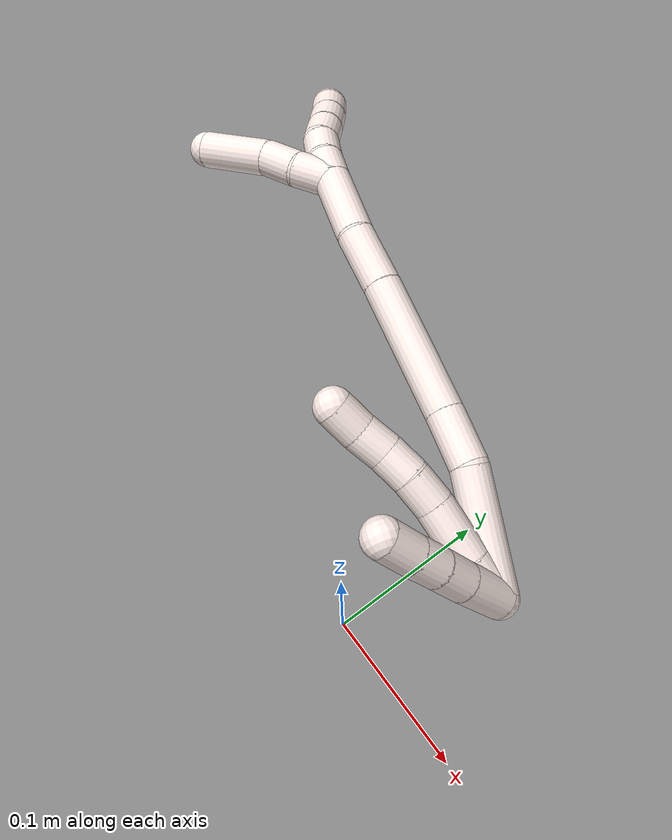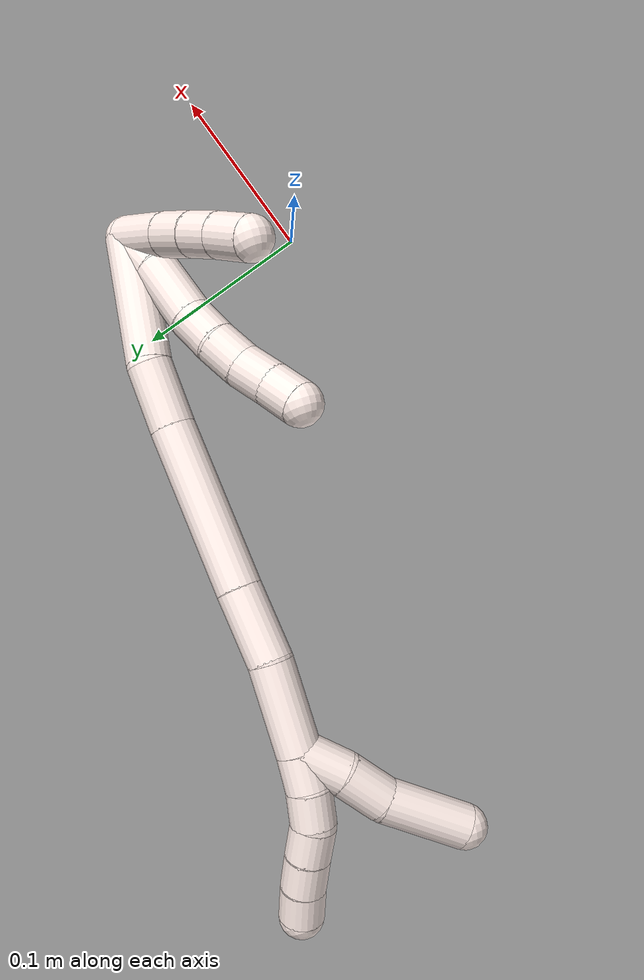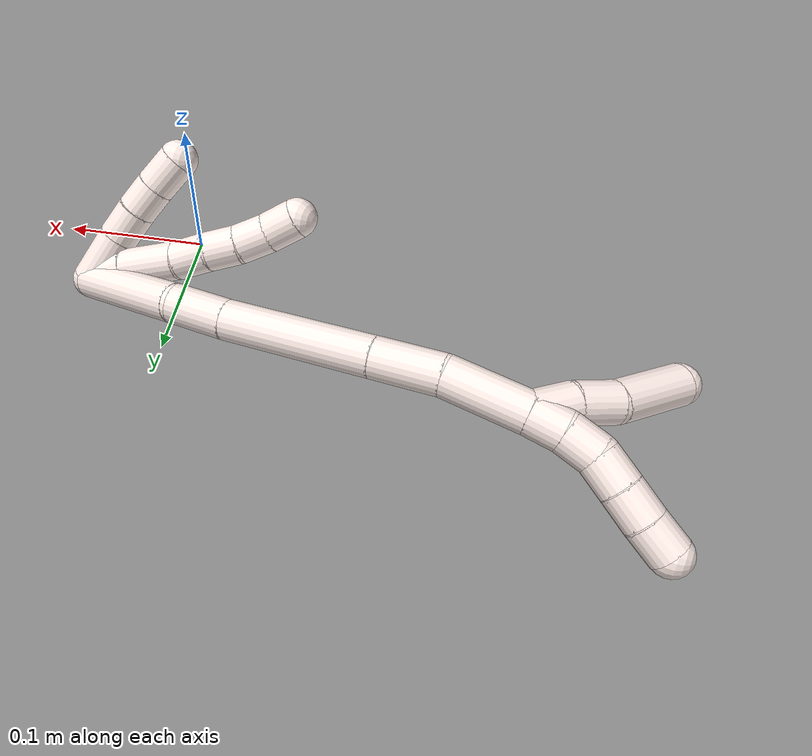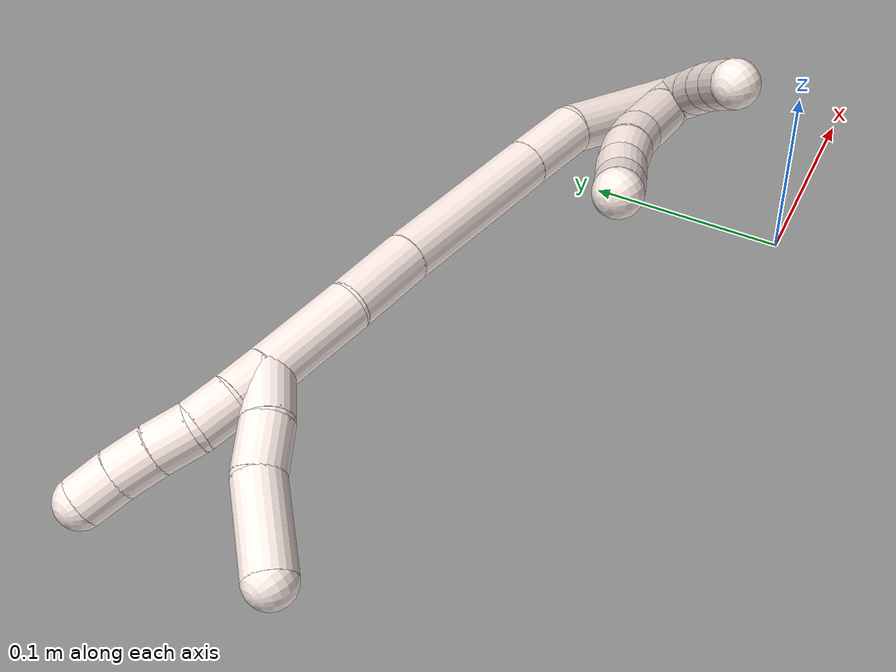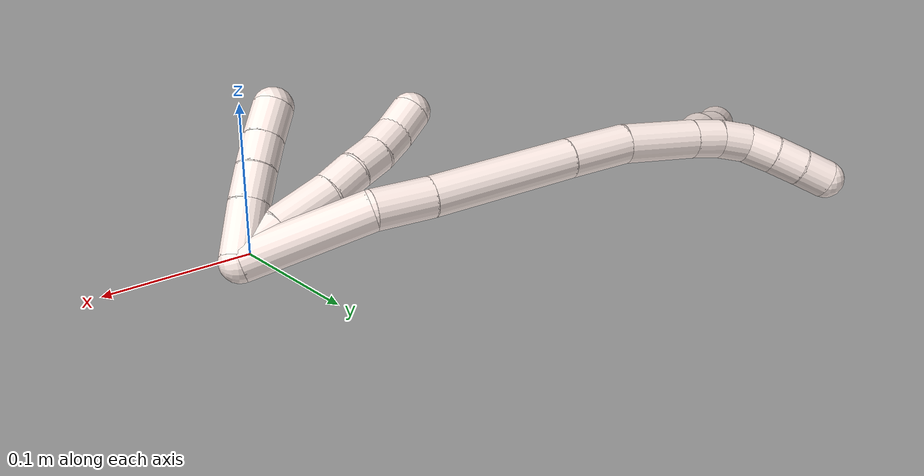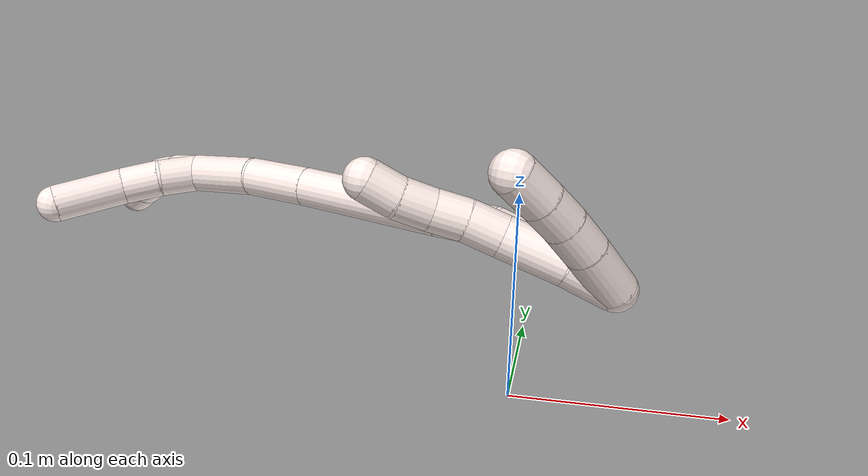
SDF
<sdf version="1.7">
 <world name="default">
  <model name="11">
   <static>0</static>
   <link name="11">
    <collision name="collision-cylinder-e_1_2_8">
     <pose>-0.000386 -0.00691 0.012647 0.500018 -0.026771 -0.006836</pose>
     <geometry><cylinder><radius>0.0125</radius><length>0.028834</length></cylinder></geometry>
     <surface>
      <friction><ode><mu>1.16</mu><mu2>1.16</mu2><slip1>0</slip1><slip2>0</slip2></ode></friction>
      <contact><ode><kp>1e+06</kp><kd>1</kd><max_vel>0</max_vel><min_depth>0.001</min_depth></ode></contact>
     </surface>
    </collision>
    <visual name="visual-cylinder-e_1_2_8">
     <pose>-0.000386 -0.00691 0.012647 0.500018 -0.026771 -0.006836</pose>
     <geometry><cylinder><radius>0.0125</radius><length>0.028834</length></cylinder></geometry>
     <material><ambient>1 0.933333 0.909804 1</ambient></material>
    </visual>
    <collision name="collision-cylinder-e_2_8_9">
     <pose>-0.001235 -0.020802 0.043143 0.372903 -0.024167 -0.004559</pose>
     <geometry><cylinder><radius>0.0125</radius><length>0.038342</length></cylinder></geometry>
     <surface>
      <friction><ode><mu>1.16</mu><mu2>1.16</mu2><slip1>0</slip1><slip2>0</slip2></ode></friction>
      <contact><ode><kp>1e+06</kp><kd>1</kd><max_vel>0</max_vel><min_depth>0.001</min_depth></ode></contact>
     </surface>
    </collision>
    <visual name="visual-cylinder-e_2_8_9">
     <pose>-0.001235 -0.020802 0.043143 0.372903 -0.024167 -0.004559</pose>
     <geometry><cylinder><radius>0.0125</radius><length>0.038342</length></cylinder></geometry>
     <material><ambient>1 0.933333 0.909804 1</ambient></material>
    </visual>
    <collision name="collision-cylinder-e_3_9_10">
     <pose>-0.002648 -0.032897 0.070535 0.49185 -0.087475 -0.02197</pose>
     <geometry><cylinder><radius>0.0125</radius><length>0.021739</length></cylinder></geometry>
     <surface>
      <friction><ode><mu>1.16</mu><mu2>1.16</mu2><slip1>0</slip1><slip2>0</slip2></ode></friction>
      <contact><ode><kp>1e+06</kp><kd>1</kd><max_vel>0</max_vel><min_depth>0.001</min_depth></ode></contact>
     </surface>
    </collision>
    <visual name="visual-cylinder-e_3_9_10">
     <pose>-0.002648 -0.032897 0.070535 0.49185 -0.087475 -0.02197</pose>
     <geometry><cylinder><radius>0.0125</radius><length>0.021739</length></cylinder></geometry>
     <material><ambient>1 0.933333 0.909804 1</ambient></material>
    </visual>
    <collision name="collision-cylinder-e_4_10_11">
     <pose>-0.005881 -0.042473 0.088884 0.469135 -0.227375 -0.054557</pose>
     <geometry><cylinder><radius>0.0125</radius><length>0.020262</length></cylinder></geometry>
     <surface>
      <friction><ode><mu>1.16</mu><mu2>1.16</mu2><slip1>0</slip1><slip2>0</slip2></ode></friction>
      <contact><ode><kp>1e+06</kp><kd>1</kd><max_vel>0</max_vel><min_depth>0.001</min_depth></ode></contact>
     </surface>
    </collision>
    <visual name="visual-cylinder-e_4_10_11">
     <pose>-0.005881 -0.042473 0.088884 0.469135 -0.227375 -0.054557</pose>
     <geometry><cylinder><radius>0.0125</radius><length>0.020262</length></cylinder></geometry>
     <material><ambient>1 0.933333 0.909804 1</ambient></material>
    </visual>
    <collision name="collision-cylinder-e_5_11_12">
     <pose>-0.010673 -0.052634 0.105726 0.616612 -0.249226 -0.07974</pose>
     <geometry><cylinder><radius>0.0125</radius><length>0.020334</length></cylinder></geometry>
     <surface>
      <friction><ode><mu>1.16</mu><mu2>1.16</mu2><slip1>0</slip1><slip2>0</slip2></ode></friction>
      <contact><ode><kp>1e+06</kp><kd>1</kd><max_vel>0</max_vel><min_depth>0.001</min_depth></ode></contact>
     </surface>
    </collision>
    <visual name="visual-cylinder-e_5_11_12">
     <pose>-0.010673 -0.052634 0.105726 0.616612 -0.249226 -0.07974</pose>
     <geometry><cylinder><radius>0.0125</radius><length>0.020334</length></cylinder></geometry>
     <material><ambient>1 0.933333 0.909804 1</ambient></material>
    </visual>
    <collision name="collision-cylinder-e_6_12_6">
     <pose>-0.014144 -0.064772 0.121673 0.683451 -0.09419 -0.033523</pose>
     <geometry><cylinder><radius>0.0125</radius><length>0.020489</length></cylinder></geometry>
     <surface>
      <friction><ode><mu>1.16</mu><mu2>1.16</mu2><slip1>0</slip1><slip2>0</slip2></ode></friction>
      <contact><ode><kp>1e+06</kp><kd>1</kd><max_vel>0</max_vel><min_depth>0.001</min_depth></ode></contact>
     </surface>
    </collision>
    <visual name="visual-cylinder-e_6_12_6">
     <pose>-0.014144 -0.064772 0.121673 0.683451 -0.09419 -0.033523</pose>
     <geometry><cylinder><radius>0.0125</radius><length>0.020489</length></cylinder></geometry>
     <material><ambient>1 0.933333 0.909804 1</ambient></material>
    </visual>
    <collision name="collision-cylinder-e_1_2_13">
     <pose>-0.000385 -0.01581 0.006957 1.15627 -0.022265 -0.014529</pose>
     <geometry><cylinder><radius>0.0125</radius><length>0.034555</length></cylinder></geometry>
     <surface>
      <friction><ode><mu>1.16</mu><mu2>1.16</mu2><slip1>0</slip1><slip2>0</slip2></ode></friction>
      <contact><ode><kp>1e+06</kp><kd>1</kd><max_vel>0</max_vel><min_depth>0.001</min_depth></ode></contact>
     </surface>
    </collision>
    <visual name="visual-cylinder-e_1_2_13">
     <pose>-0.000385 -0.01581 0.006957 1.15627 -0.022265 -0.014529</pose>
     <geometry><cylinder><radius>0.0125</radius><length>0.034555</length></cylinder></geometry>
     <material><ambient>1 0.933333 0.909804 1</ambient></material>
    </visual>
    <collision name="collision-cylinder-e_2_13_14">
     <pose>-0.000999 -0.041619 0.018907 1.10764 -0.020567 -0.012719</pose>
     <geometry><cylinder><radius>0.0125</radius><length>0.022356</length></cylinder></geometry>
     <surface>
      <friction><ode><mu>1.16</mu><mu2>1.16</mu2><slip1>0</slip1><slip2>0</slip2></ode></friction>
      <contact><ode><kp>1e+06</kp><kd>1</kd><max_vel>0</max_vel><min_depth>0.001</min_depth></ode></contact>
     </surface>
    </collision>
    <visual name="visual-cylinder-e_2_13_14">
     <pose>-0.000999 -0.041619 0.018907 1.10764 -0.020567 -0.012719</pose>
     <geometry><cylinder><radius>0.0125</radius><length>0.022356</length></cylinder></geometry>
     <material><ambient>1 0.933333 0.909804 1</ambient></material>
    </visual>
    <collision name="collision-cylinder-e_3_14_15">
     <pose>-0.001966 -0.060414 0.028646 1.076 -0.073592 -0.043926</pose>
     <geometry><cylinder><radius>0.0125</radius><length>0.020045</length></cylinder></geometry>
     <surface>
      <friction><ode><mu>1.16</mu><mu2>1.16</mu2><slip1>0</slip1><slip2>0</slip2></ode></friction>
      <contact><ode><kp>1e+06</kp><kd>1</kd><max_vel>0</max_vel><min_depth>0.001</min_depth></ode></contact>
     </surface>
    </collision>
    <visual name="visual-cylinder-e_3_14_15">
     <pose>-0.001966 -0.060414 0.028646 1.076 -0.073592 -0.043926</pose>
     <geometry><cylinder><radius>0.0125</radius><length>0.020045</length></cylinder></geometry>
     <material><ambient>1 0.933333 0.909804 1</ambient></material>
    </visual>
    <collision name="collision-cylinder-e_4_15_5">
     <pose>-0.003562 -0.07908 0.039275 1.03329 -0.07462 -0.042406</pose>
     <geometry><cylinder><radius>0.0125</radius><length>0.023044</length></cylinder></geometry>
     <surface>
      <friction><ode><mu>1.16</mu><mu2>1.16</mu2><slip1>0</slip1><slip2>0</slip2></ode></friction>
      <contact><ode><kp>1e+06</kp><kd>1</kd><max_vel>0</max_vel><min_depth>0.001</min_depth></ode></contact>
     </surface>
    </collision>
    <visual name="visual-cylinder-e_4_15_5">
     <pose>-0.003562 -0.07908 0.039275 1.03329 -0.07462 -0.042406</pose>
     <geometry><cylinder><radius>0.0125</radius><length>0.023044</length></cylinder></geometry>
     <material><ambient>1 0.933333 0.909804 1</ambient></material>
    </visual>
    <collision name="collision-cylinder-e_1_2_16">
     <pose>0.009001 -0.002492 0.038362 0.06488 0.229984 0.007496</pose>
     <geometry><cylinder><radius>0.0125</radius><length>0.078965</length></cylinder></geometry>
     <surface>
      <friction><ode><mu>1.16</mu><mu2>1.16</mu2><slip1>0</slip1><slip2>0</slip2></ode></friction>
      <contact><ode><kp>1e+06</kp><kd>1</kd><max_vel>0</max_vel><min_depth>0.001</min_depth></ode></contact>
     </surface>
    </collision>
    <visual name="visual-cylinder-e_1_2_16">
     <pose>0.009001 -0.002492 0.038362 0.06488 0.229984 0.007496</pose>
     <geometry><cylinder><radius>0.0125</radius><length>0.078965</length></cylinder></geometry>
     <material><ambient>1 0.933333 0.909804 1</ambient></material>
    </visual>
    <collision name="collision-cylinder-e_2_16_17">
     <pose>0.017227 -0.004835 0.095096 -0.008146 -0.042116 0.000172</pose>
     <geometry><cylinder><radius>0.0125</radius><length>0.036777</length></cylinder></geometry>
     <surface>
      <friction><ode><mu>1.16</mu><mu2>1.16</mu2><slip1>0</slip1><slip2>0</slip2></ode></friction>
      <contact><ode><kp>1e+06</kp><kd>1</kd><max_vel>0</max_vel><min_depth>0.001</min_depth></ode></contact>
     </surface>
    </collision>
    <visual name="visual-cylinder-e_2_16_17">
     <pose>0.017227 -0.004835 0.095096 -0.008146 -0.042116 0.000172</pose>
     <geometry><cylinder><radius>0.0125</radius><length>0.036777</length></cylinder></geometry>
     <material><ambient>1 0.933333 0.909804 1</ambient></material>
    </visual>
    <collision name="collision-cylinder-e_3_17_18">
     <pose>0.014388 -0.006658 0.160153 0.04223 -0.044154 -0.000933</pose>
     <geometry><cylinder><radius>0.0125</radius><length>0.093546</length></cylinder></geometry>
     <surface>
      <friction><ode><mu>1.16</mu><mu2>1.16</mu2><slip1>0</slip1><slip2>0</slip2></ode></friction>
      <contact><ode><kp>1e+06</kp><kd>1</kd><max_vel>0</max_vel><min_depth>0.001</min_depth></ode></contact>
     </surface>
    </collision>
    <visual name="visual-cylinder-e_3_17_18">
     <pose>0.014388 -0.006658 0.160153 0.04223 -0.044154 -0.000933</pose>
     <geometry><cylinder><radius>0.0125</radius><length>0.093546</length></cylinder></geometry>
     <material><ambient>1 0.933333 0.909804 1</ambient></material>
    </visual>
    <collision name="collision-cylinder-e_4_18_19">
     <pose>0.0108 -0.009351 0.22735 0.035078 -0.074097 -0.0013</pose>
     <geometry><cylinder><radius>0.0125</radius><length>0.04116</length></cylinder></geometry>
     <surface>
      <friction><ode><mu>1.16</mu><mu2>1.16</mu2><slip1>0</slip1><slip2>0</slip2></ode></friction>
      <contact><ode><kp>1e+06</kp><kd>1</kd><max_vel>0</max_vel><min_depth>0.001</min_depth></ode></contact>
     </surface>
    </collision>
    <visual name="visual-cylinder-e_4_18_19">
     <pose>0.0108 -0.009351 0.22735 0.035078 -0.074097 -0.0013</pose>
     <geometry><cylinder><radius>0.0125</radius><length>0.04116</length></cylinder></geometry>
     <material><ambient>1 0.933333 0.909804 1</ambient></material>
    </visual>
    <collision name="collision-cylinder-e_5_19_1">
     <pose>0.007409 -0.006786 0.272347 -0.133346 -0.075436 0.005039</pose>
     <geometry><cylinder><radius>0.0125</radius><length>0.049552</length></cylinder></geometry>
     <surface>
      <friction><ode><mu>1.16</mu><mu2>1.16</mu2><slip1>0</slip1><slip2>0</slip2></ode></friction>
      <contact><ode><kp>1e+06</kp><kd>1</kd><max_vel>0</max_vel><min_depth>0.001</min_depth></ode></contact>
     </surface>
    </collision>
    <visual name="visual-cylinder-e_5_19_1">
     <pose>0.007409 -0.006786 0.272347 -0.133346 -0.075436 0.005039</pose>
     <geometry><cylinder><radius>0.0125</radius><length>0.049552</length></cylinder></geometry>
     <material><ambient>1 0.933333 0.909804 1</ambient></material>
    </visual>
    <collision name="collision-cylinder-e_1_1_20">
     <pose>-0.003018 -0.007805 0.305904 0.442991 -0.705958 -0.165545</pose>
     <geometry><cylinder><radius>0.0125</radius><length>0.026388</length></cylinder></geometry>
     <surface>
      <friction><ode><mu>1.16</mu><mu2>1.16</mu2><slip1>0</slip1><slip2>0</slip2></ode></friction>
      <contact><ode><kp>1e+06</kp><kd>1</kd><max_vel>0</max_vel><min_depth>0.001</min_depth></ode></contact>
     </surface>
    </collision>
    <visual name="visual-cylinder-e_1_1_20">
     <pose>-0.003018 -0.007805 0.305904 0.442991 -0.705958 -0.165545</pose>
     <geometry><cylinder><radius>0.0125</radius><length>0.026388</length></cylinder></geometry>
     <material><ambient>1 0.933333 0.909804 1</ambient></material>
    </visual>
    <collision name="collision-cylinder-e_2_20_21">
     <pose>-0.019695 -0.01418 0.324937 0.205009 -0.673418 -0.071982</pose>
     <geometry><cylinder><radius>0.0125</radius><length>0.026031</length></cylinder></geometry>
     <surface>
      <friction><ode><mu>1.16</mu><mu2>1.16</mu2><slip1>0</slip1><slip2>0</slip2></ode></friction>
      <contact><ode><kp>1e+06</kp><kd>1</kd><max_vel>0</max_vel><min_depth>0.001</min_depth></ode></contact>
     </surface>
    </collision>
    <visual name="visual-cylinder-e_2_20_21">
     <pose>-0.019695 -0.01418 0.324937 0.205009 -0.673418 -0.071982</pose>
     <geometry><cylinder><radius>0.0125</radius><length>0.026031</length></cylinder></geometry>
     <material><ambient>1 0.933333 0.909804 1</ambient></material>
    </visual>
    <collision name="collision-cylinder-e_3_21_4">
     <pose>-0.045624 -0.023161 0.349075 0.453533 -0.846104 -0.207029</pose>
     <geometry><cylinder><radius>0.0125</radius><length>0.04758</length></cylinder></geometry>
     <surface>
      <friction><ode><mu>1.16</mu><mu2>1.16</mu2><slip1>0</slip1><slip2>0</slip2></ode></friction>
      <contact><ode><kp>1e+06</kp><kd>1</kd><max_vel>0</max_vel><min_depth>0.001</min_depth></ode></contact>
     </surface>
    </collision>
    <visual name="visual-cylinder-e_3_21_4">
     <pose>-0.045624 -0.023161 0.349075 0.453533 -0.846104 -0.207029</pose>
     <geometry><cylinder><radius>0.0125</radius><length>0.04758</length></cylinder></geometry>
     <material><ambient>1 0.933333 0.909804 1</ambient></material>
    </visual>
    <collision name="collision-cylinder-e_1_1_22">
     <pose>0.004887 -0.001552 0.306619 -0.196636 -0.065522 0.006465</pose>
     <geometry><cylinder><radius>0.0125</radius><length>0.02</length></cylinder></geometry>
     <surface>
      <friction><ode><mu>1.16</mu><mu2>1.16</mu2><slip1>0</slip1><slip2>0</slip2></ode></friction>
      <contact><ode><kp>1e+06</kp><kd>1</kd><max_vel>0</max_vel><min_depth>0.001</min_depth></ode></contact>
     </surface>
    </collision>
    <visual name="visual-cylinder-e_1_1_22">
     <pose>0.004887 -0.001552 0.306619 -0.196636 -0.065522 0.006465</pose>
     <geometry><cylinder><radius>0.0125</radius><length>0.02</length></cylinder></geometry>
     <material><ambient>1 0.933333 0.909804 1</ambient></material>
    </visual>
    <collision name="collision-cylinder-e_2_22_23">
     <pose>0.003702 0.004001 0.325719 -0.369191 -0.053031 0.009904</pose>
     <geometry><cylinder><radius>0.0125</radius><length>0.02</length></cylinder></geometry>
     <surface>
      <friction><ode><mu>1.16</mu><mu2>1.16</mu2><slip1>0</slip1><slip2>0</slip2></ode></friction>
      <contact><ode><kp>1e+06</kp><kd>1</kd><max_vel>0</max_vel><min_depth>0.001</min_depth></ode></contact>
     </surface>
    </collision>
    <visual name="visual-cylinder-e_2_22_23">
     <pose>0.003702 0.004001 0.325719 -0.369191 -0.053031 0.009904</pose>
     <geometry><cylinder><radius>0.0125</radius><length>0.02</length></cylinder></geometry>
     <material><ambient>1 0.933333 0.909804 1</ambient></material>
    </visual>
    <collision name="collision-cylinder-e_3_23_24">
     <pose>0.003673 0.013815 0.342853 -0.67109 0.050115 -0.01748</pose>
     <geometry><cylinder><radius>0.0125</radius><length>0.02</length></cylinder></geometry>
     <surface>
      <friction><ode><mu>1.16</mu><mu2>1.16</mu2><slip1>0</slip1><slip2>0</slip2></ode></friction>
      <contact><ode><kp>1e+06</kp><kd>1</kd><max_vel>0</max_vel><min_depth>0.001</min_depth></ode></contact>
     </surface>
    </collision>
    <visual name="visual-cylinder-e_3_23_24">
     <pose>0.003673 0.013815 0.342853 -0.67109 0.050115 -0.01748</pose>
     <geometry><cylinder><radius>0.0125</radius><length>0.02</length></cylinder></geometry>
     <material><ambient>1 0.933333 0.909804 1</ambient></material>
    </visual>
    <collision name="collision-cylinder-e_4_24_25">
     <pose>0.004064 0.026377 0.358399 -0.688164 -0.010985 0.003936</pose>
     <geometry><cylinder><radius>0.0125</radius><length>0.02</length></cylinder></geometry>
     <surface>
      <friction><ode><mu>1.16</mu><mu2>1.16</mu2><slip1>0</slip1><slip2>0</slip2></ode></friction>
      <contact><ode><kp>1e+06</kp><kd>1</kd><max_vel>0</max_vel><min_depth>0.001</min_depth></ode></contact>
     </surface>
    </collision>
    <visual name="visual-cylinder-e_4_24_25">
     <pose>0.004064 0.026377 0.358399 -0.688164 -0.010985 0.003936</pose>
     <geometry><cylinder><radius>0.0125</radius><length>0.02</length></cylinder></geometry>
     <material><ambient>1 0.933333 0.909804 1</ambient></material>
    </visual>
    <collision name="collision-cylinder-e_5_25_3">
     <pose>0.00312 0.038845 0.373989 -0.660973 -0.08353 0.028671</pose>
     <geometry><cylinder><radius>0.0125</radius><length>0.02</length></cylinder></geometry>
     <surface>
      <friction><ode><mu>1.16</mu><mu2>1.16</mu2><slip1>0</slip1><slip2>0</slip2></ode></friction>
      <contact><ode><kp>1e+06</kp><kd>1</kd><max_vel>0</max_vel><min_depth>0.001</min_depth></ode></contact>
     </surface>
    </collision>
    <visual name="visual-cylinder-e_5_25_3">
     <pose>0.00312 0.038845 0.373989 -0.660973 -0.08353 0.028671</pose>
     <geometry><cylinder><radius>0.0125</radius><length>0.02</length></cylinder></geometry>
     <material><ambient>1 0.933333 0.909804 1</ambient></material>
    </visual>
    <collision name="collision-sphere-3">
     <pose>0.002286 0.044963 0.381855 0 -0 0</pose>
     <geometry><sphere><radius>0.0125</radius></sphere></geometry>
     <surface>
      <friction><ode><mu>1.16</mu><mu2>1.16</mu2><slip1>0</slip1><slip2>0</slip2></ode></friction>
      <contact><ode><kp>1e+06</kp><kd>1</kd><max_vel>0</max_vel><min_depth>0.001</min_depth></ode></contact>
     </surface>
    </collision>
    <visual name="visual-sphere-3">
     <pose>0.002286 0.044963 0.381855 0 -0 0</pose>
     <geometry><sphere><radius>0.0125</radius></sphere></geometry>
     <material><ambient>1 0.933333 0.909804 1</ambient></material>
    </visual>
    <collision name="collision-sphere-25">
     <pose>0.003955 0.032728 0.366122 0 -0 0</pose>
     <geometry><sphere><radius>0.0125</radius></sphere></geometry>
     <surface>
      <friction><ode><mu>1.16</mu><mu2>1.16</mu2><slip1>0</slip1><slip2>0</slip2></ode></friction>
      <contact><ode><kp>1e+06</kp><kd>1</kd><max_vel>0</max_vel><min_depth>0.001</min_depth></ode></contact>
     </surface>
    </collision>
    <visual name="visual-sphere-25">
     <pose>0.003955 0.032728 0.366122 0 -0 0</pose>
     <geometry><sphere><radius>0.0125</radius></sphere></geometry>
     <material><ambient>1 0.933333 0.909804 1</ambient></material>
    </visual>
    <collision name="collision-sphere-24">
     <pose>0.004174 0.020026 0.350675 0 -0 0</pose>
     <geometry><sphere><radius>0.0125</radius></sphere></geometry>
     <surface>
      <friction><ode><mu>1.16</mu><mu2>1.16</mu2><slip1>0</slip1><slip2>0</slip2></ode></friction>
      <contact><ode><kp>1e+06</kp><kd>1</kd><max_vel>0</max_vel><min_depth>0.001</min_depth></ode></contact>
     </surface>
    </collision>
    <visual name="visual-sphere-24">
     <pose>0.004174 0.020026 0.350675 0 -0 0</pose>
     <geometry><sphere><radius>0.0125</radius></sphere></geometry>
     <material><ambient>1 0.933333 0.909804 1</ambient></material>
    </visual>
    <collision name="collision-sphere-23">
     <pose>0.003172 0.007605 0.335032 0 -0 0</pose>
     <geometry><sphere><radius>0.0125</radius></sphere></geometry>
     <surface>
      <friction><ode><mu>1.16</mu><mu2>1.16</mu2><slip1>0</slip1><slip2>0</slip2></ode></friction>
      <contact><ode><kp>1e+06</kp><kd>1</kd><max_vel>0</max_vel><min_depth>0.001</min_depth></ode></contact>
     </surface>
    </collision>
    <visual name="visual-sphere-23">
     <pose>0.003172 0.007605 0.335032 0 -0 0</pose>
     <geometry><sphere><radius>0.0125</radius></sphere></geometry>
     <material><ambient>1 0.933333 0.909804 1</ambient></material>
    </visual>
    <collision name="collision-sphere-22">
     <pose>0.004233 0.000398 0.316406 0 -0 0</pose>
     <geometry><sphere><radius>0.0125</radius></sphere></geometry>
     <surface>
      <friction><ode><mu>1.16</mu><mu2>1.16</mu2><slip1>0</slip1><slip2>0</slip2></ode></friction>
      <contact><ode><kp>1e+06</kp><kd>1</kd><max_vel>0</max_vel><min_depth>0.001</min_depth></ode></contact>
     </surface>
    </collision>
    <visual name="visual-sphere-22">
     <pose>0.004233 0.000398 0.316406 0 -0 0</pose>
     <geometry><sphere><radius>0.0125</radius></sphere></geometry>
     <material><ambient>1 0.933333 0.909804 1</ambient></material>
    </visual>
    <collision name="collision-sphere-4">
     <pose>-0.063436 -0.030071 0.363251 0 -0 0</pose>
     <geometry><sphere><radius>0.0125</radius></sphere></geometry>
     <surface>
      <friction><ode><mu>1.16</mu><mu2>1.16</mu2><slip1>0</slip1><slip2>0</slip2></ode></friction>
      <contact><ode><kp>1e+06</kp><kd>1</kd><max_vel>0</max_vel><min_depth>0.001</min_depth></ode></contact>
     </surface>
    </collision>
    <visual name="visual-sphere-4">
     <pose>-0.063436 -0.030071 0.363251 0 -0 0</pose>
     <geometry><sphere><radius>0.0125</radius></sphere></geometry>
     <material><ambient>1 0.933333 0.909804 1</ambient></material>
    </visual>
    <collision name="collision-sphere-21">
     <pose>-0.027813 -0.016252 0.334898 0 -0 0</pose>
     <geometry><sphere><radius>0.0125</radius></sphere></geometry>
     <surface>
      <friction><ode><mu>1.16</mu><mu2>1.16</mu2><slip1>0</slip1><slip2>0</slip2></ode></friction>
      <contact><ode><kp>1e+06</kp><kd>1</kd><max_vel>0</max_vel><min_depth>0.001</min_depth></ode></contact>
     </surface>
    </collision>
    <visual name="visual-sphere-21">
     <pose>-0.027813 -0.016252 0.334898 0 -0 0</pose>
     <geometry><sphere><radius>0.0125</radius></sphere></geometry>
     <material><ambient>1 0.933333 0.909804 1</ambient></material>
    </visual>
    <collision name="collision-sphere-20">
     <pose>-0.011578 -0.012109 0.314976 0 -0 0</pose>
     <geometry><sphere><radius>0.0125</radius></sphere></geometry>
     <surface>
      <friction><ode><mu>1.16</mu><mu2>1.16</mu2><slip1>0</slip1><slip2>0</slip2></ode></friction>
      <contact><ode><kp>1e+06</kp><kd>1</kd><max_vel>0</max_vel><min_depth>0.001</min_depth></ode></contact>
     </surface>
    </collision>
    <visual name="visual-sphere-20">
     <pose>-0.011578 -0.012109 0.314976 0 -0 0</pose>
     <geometry><sphere><radius>0.0125</radius></sphere></geometry>
     <material><ambient>1 0.933333 0.909804 1</ambient></material>
    </visual>
    <collision name="collision-sphere-12">
     <pose>-0.013181 -0.058331 0.113765 0 -0 0</pose>
     <geometry><sphere><radius>0.0125</radius></sphere></geometry>
     <surface>
      <friction><ode><mu>1.16</mu><mu2>1.16</mu2><slip1>0</slip1><slip2>0</slip2></ode></friction>
      <contact><ode><kp>1e+06</kp><kd>1</kd><max_vel>0</max_vel><min_depth>0.001</min_depth></ode></contact>
     </surface>
    </collision>
    <visual name="visual-sphere-12">
     <pose>-0.013181 -0.058331 0.113765 0 -0 0</pose>
     <geometry><sphere><radius>0.0125</radius></sphere></geometry>
     <material><ambient>1 0.933333 0.909804 1</ambient></material>
    </visual>
    <collision name="collision-sphere-11">
     <pose>-0.008165 -0.046936 0.097688 0 -0 0</pose>
     <geometry><sphere><radius>0.0125</radius></sphere></geometry>
     <surface>
      <friction><ode><mu>1.16</mu><mu2>1.16</mu2><slip1>0</slip1><slip2>0</slip2></ode></friction>
      <contact><ode><kp>1e+06</kp><kd>1</kd><max_vel>0</max_vel><min_depth>0.001</min_depth></ode></contact>
     </surface>
    </collision>
    <visual name="visual-sphere-11">
     <pose>-0.008165 -0.046936 0.097688 0 -0 0</pose>
     <geometry><sphere><radius>0.0125</radius></sphere></geometry>
     <material><ambient>1 0.933333 0.909804 1</ambient></material>
    </visual>
    <collision name="collision-sphere-10">
     <pose>-0.003597 -0.038011 0.08008 0 -0 0</pose>
     <geometry><sphere><radius>0.0125</radius></sphere></geometry>
     <surface>
      <friction><ode><mu>1.16</mu><mu2>1.16</mu2><slip1>0</slip1><slip2>0</slip2></ode></friction>
      <contact><ode><kp>1e+06</kp><kd>1</kd><max_vel>0</max_vel><min_depth>0.001</min_depth></ode></contact>
     </surface>
    </collision>
    <visual name="visual-sphere-10">
     <pose>-0.003597 -0.038011 0.08008 0 -0 0</pose>
     <geometry><sphere><radius>0.0125</radius></sphere></geometry>
     <material><ambient>1 0.933333 0.909804 1</ambient></material>
    </visual>
    <collision name="collision-sphere-9">
     <pose>-0.001698 -0.027784 0.060991 0 -0 0</pose>
     <geometry><sphere><radius>0.0125</radius></sphere></geometry>
     <surface>
      <friction><ode><mu>1.16</mu><mu2>1.16</mu2><slip1>0</slip1><slip2>0</slip2></ode></friction>
      <contact><ode><kp>1e+06</kp><kd>1</kd><max_vel>0</max_vel><min_depth>0.001</min_depth></ode></contact>
     </surface>
    </collision>
    <visual name="visual-sphere-9">
     <pose>-0.001698 -0.027784 0.060991 0 -0 0</pose>
     <geometry><sphere><radius>0.0125</radius></sphere></geometry>
     <material><ambient>1 0.933333 0.909804 1</ambient></material>
    </visual>
    <collision name="collision-sphere-2">
     <geometry><sphere><radius>0.0125</radius></sphere></geometry>
     <surface>
      <friction><ode><mu>1.16</mu><mu2>1.16</mu2><slip1>0</slip1><slip2>0</slip2></ode></friction>
      <contact><ode><kp>1e+06</kp><kd>1</kd><max_vel>0</max_vel><min_depth>0.001</min_depth></ode></contact>
     </surface>
    </collision>
    <visual name="visual-sphere-2">
     <geometry><sphere><radius>0.0125</radius></sphere></geometry>
     <material><ambient>1 0.933333 0.909804 1</ambient></material>
    </visual>
    <collision name="collision-sphere-19">
     <pose>0.009276 -0.01007 0.247861 0 -0 0</pose>
     <geometry><sphere><radius>0.0125</radius></sphere></geometry>
     <surface>
      <friction><ode><mu>1.16</mu><mu2>1.16</mu2><slip1>0</slip1><slip2>0</slip2></ode></friction>
      <contact><ode><kp>1e+06</kp><kd>1</kd><max_vel>0</max_vel><min_depth>0.001</min_depth></ode></contact>
     </surface>
    </collision>
    <visual name="visual-sphere-19">
     <pose>0.009276 -0.01007 0.247861 0 -0 0</pose>
     <geometry><sphere><radius>0.0125</radius></sphere></geometry>
     <material><ambient>1 0.933333 0.909804 1</ambient></material>
    </visual>
    <collision name="collision-sphere-8">
     <pose>-0.000772 -0.013819 0.025295 0 -0 0</pose>
     <geometry><sphere><radius>0.0125</radius></sphere></geometry>
     <surface>
      <friction><ode><mu>1.16</mu><mu2>1.16</mu2><slip1>0</slip1><slip2>0</slip2></ode></friction>
      <contact><ode><kp>1e+06</kp><kd>1</kd><max_vel>0</max_vel><min_depth>0.001</min_depth></ode></contact>
     </surface>
    </collision>
    <visual name="visual-sphere-8">
     <pose>-0.000772 -0.013819 0.025295 0 -0 0</pose>
     <geometry><sphere><radius>0.0125</radius></sphere></geometry>
     <material><ambient>1 0.933333 0.909804 1</ambient></material>
    </visual>
    <collision name="collision-sphere-6">
     <pose>-0.015108 -0.071212 0.129581 0 -0 0</pose>
     <geometry><sphere><radius>0.0125</radius></sphere></geometry>
     <surface>
      <friction><ode><mu>1.16</mu><mu2>1.16</mu2><slip1>0</slip1><slip2>0</slip2></ode></friction>
      <contact><ode><kp>1e+06</kp><kd>1</kd><max_vel>0</max_vel><min_depth>0.001</min_depth></ode></contact>
     </surface>
    </collision>
    <visual name="visual-sphere-6">
     <pose>-0.015108 -0.071212 0.129581 0 -0 0</pose>
     <geometry><sphere><radius>0.0125</radius></sphere></geometry>
     <material><ambient>1 0.933333 0.909804 1</ambient></material>
    </visual>
    <collision name="collision-sphere-13">
     <pose>-0.000769 -0.03162 0.013914 0 -0 0</pose>
     <geometry><sphere><radius>0.0125</radius></sphere></geometry>
     <surface>
      <friction><ode><mu>1.16</mu><mu2>1.16</mu2><slip1>0</slip1><slip2>0</slip2></ode></friction>
      <contact><ode><kp>1e+06</kp><kd>1</kd><max_vel>0</max_vel><min_depth>0.001</min_depth></ode></contact>
     </surface>
    </collision>
    <visual name="visual-sphere-13">
     <pose>-0.000769 -0.03162 0.013914 0 -0 0</pose>
     <geometry><sphere><radius>0.0125</radius></sphere></geometry>
     <material><ambient>1 0.933333 0.909804 1</ambient></material>
    </visual>
    <collision name="collision-sphere-14">
     <pose>-0.001229 -0.051617 0.0239 0 -0 0</pose>
     <geometry><sphere><radius>0.0125</radius></sphere></geometry>
     <surface>
      <friction><ode><mu>1.16</mu><mu2>1.16</mu2><slip1>0</slip1><slip2>0</slip2></ode></friction>
      <contact><ode><kp>1e+06</kp><kd>1</kd><max_vel>0</max_vel><min_depth>0.001</min_depth></ode></contact>
     </surface>
    </collision>
    <visual name="visual-sphere-14">
     <pose>-0.001229 -0.051617 0.0239 0 -0 0</pose>
     <geometry><sphere><radius>0.0125</radius></sphere></geometry>
     <material><ambient>1 0.933333 0.909804 1</ambient></material>
    </visual>
    <collision name="collision-sphere-15">
     <pose>-0.002703 -0.06921 0.033392 0 -0 0</pose>
     <geometry><sphere><radius>0.0125</radius></sphere></geometry>
     <surface>
      <friction><ode><mu>1.16</mu><mu2>1.16</mu2><slip1>0</slip1><slip2>0</slip2></ode></friction>
      <contact><ode><kp>1e+06</kp><kd>1</kd><max_vel>0</max_vel><min_depth>0.001</min_depth></ode></contact>
     </surface>
    </collision>
    <visual name="visual-sphere-15">
     <pose>-0.002703 -0.06921 0.033392 0 -0 0</pose>
     <geometry><sphere><radius>0.0125</radius></sphere></geometry>
     <material><ambient>1 0.933333 0.909804 1</ambient></material>
    </visual>
    <collision name="collision-sphere-5">
     <pose>-0.004421 -0.08895 0.045158 0 -0 0</pose>
     <geometry><sphere><radius>0.0125</radius></sphere></geometry>
     <surface>
      <friction><ode><mu>1.16</mu><mu2>1.16</mu2><slip1>0</slip1><slip2>0</slip2></ode></friction>
      <contact><ode><kp>1e+06</kp><kd>1</kd><max_vel>0</max_vel><min_depth>0.001</min_depth></ode></contact>
     </surface>
    </collision>
    <visual name="visual-sphere-5">
     <pose>-0.004421 -0.08895 0.045158 0 -0 0</pose>
     <geometry><sphere><radius>0.0125</radius></sphere></geometry>
     <material><ambient>1 0.933333 0.909804 1</ambient></material>
    </visual>
    <collision name="collision-sphere-16">
     <pose>0.018001 -0.004985 0.076724 0 -0 0</pose>
     <geometry><sphere><radius>0.0125</radius></sphere></geometry>
     <surface>
      <friction><ode><mu>1.16</mu><mu2>1.16</mu2><slip1>0</slip1><slip2>0</slip2></ode></friction>
      <contact><ode><kp>1e+06</kp><kd>1</kd><max_vel>0</max_vel><min_depth>0.001</min_depth></ode></contact>
     </surface>
    </collision>
    <visual name="visual-sphere-16">
     <pose>0.018001 -0.004985 0.076724 0 -0 0</pose>
     <geometry><sphere><radius>0.0125</radius></sphere></geometry>
     <material><ambient>1 0.933333 0.909804 1</ambient></material>
    </visual>
    <collision name="collision-sphere-17">
     <pose>0.016453 -0.004686 0.113468 0 -0 0</pose>
     <geometry><sphere><radius>0.0125</radius></sphere></geometry>
     <surface>
      <friction><ode><mu>1.16</mu><mu2>1.16</mu2><slip1>0</slip1><slip2>0</slip2></ode></friction>
      <contact><ode><kp>1e+06</kp><kd>1</kd><max_vel>0</max_vel><min_depth>0.001</min_depth></ode></contact>
     </surface>
    </collision>
    <visual name="visual-sphere-17">
     <pose>0.016453 -0.004686 0.113468 0 -0 0</pose>
     <geometry><sphere><radius>0.0125</radius></sphere></geometry>
     <material><ambient>1 0.933333 0.909804 1</ambient></material>
    </visual>
    <collision name="collision-sphere-18">
     <pose>0.012324 -0.008631 0.206839 0 -0 0</pose>
     <geometry><sphere><radius>0.0125</radius></sphere></geometry>
     <surface>
      <friction><ode><mu>1.16</mu><mu2>1.16</mu2><slip1>0</slip1><slip2>0</slip2></ode></friction>
      <contact><ode><kp>1e+06</kp><kd>1</kd><max_vel>0</max_vel><min_depth>0.001</min_depth></ode></contact>
     </surface>
    </collision>
    <visual name="visual-sphere-18">
     <pose>0.012324 -0.008631 0.206839 0 -0 0</pose>
     <geometry><sphere><radius>0.0125</radius></sphere></geometry>
     <material><ambient>1 0.933333 0.909804 1</ambient></material>
    </visual>
    <collision name="collision-sphere-1">
     <pose>0.005542 -0.003501 0.296833 0 -0 0</pose>
     <geometry><sphere><radius>0.0125</radius></sphere></geometry>
     <surface>
      <friction><ode><mu>1.16</mu><mu2>1.16</mu2><slip1>0</slip1><slip2>0</slip2></ode></friction>
      <contact><ode><kp>1e+06</kp><kd>1</kd><max_vel>0</max_vel><min_depth>0.001</min_depth></ode></contact>
     </surface>
    </collision>
    <visual name="visual-sphere-1">
     <pose>0.005542 -0.003501 0.296833 0 -0 0</pose>
     <geometry><sphere><radius>0.0125</radius></sphere></geometry>
     <material><ambient>1 0.933333 0.909804 1</ambient></material>
    </visual>
    <inertial>
     <pose>0.000305 -0.014995 0.165055 0 -0 0</pose>
     <mass>0.75</mass>
     <inertia>
      <ixx>0.000174</ixx>
      <ixy>0</ixy>
      <ixz>0</ixz>
      <iyy>0.000167</iyy>
      <iyz>0</iyz>
      <izz>7.8e-05</izz>
     </inertia>
    </inertial>
   </link>
   <pose>0.04892 0.077859 0.034153 -1.44528 -0.691257 1.19903</pose>
  </model>
 </world>
</sdf>
